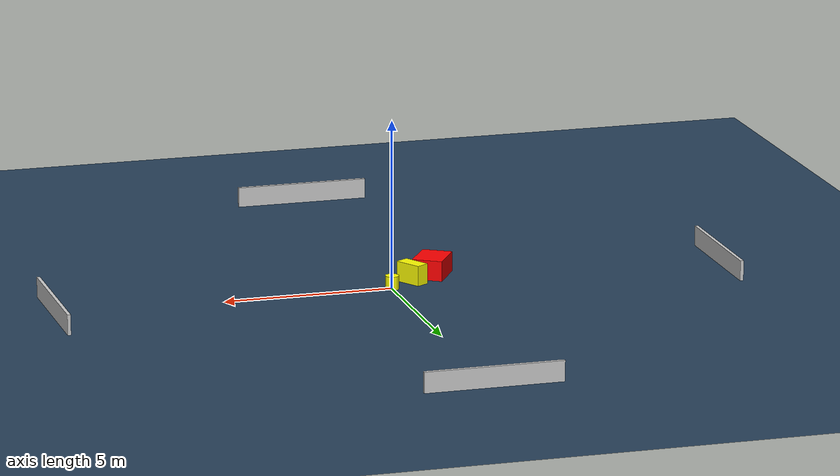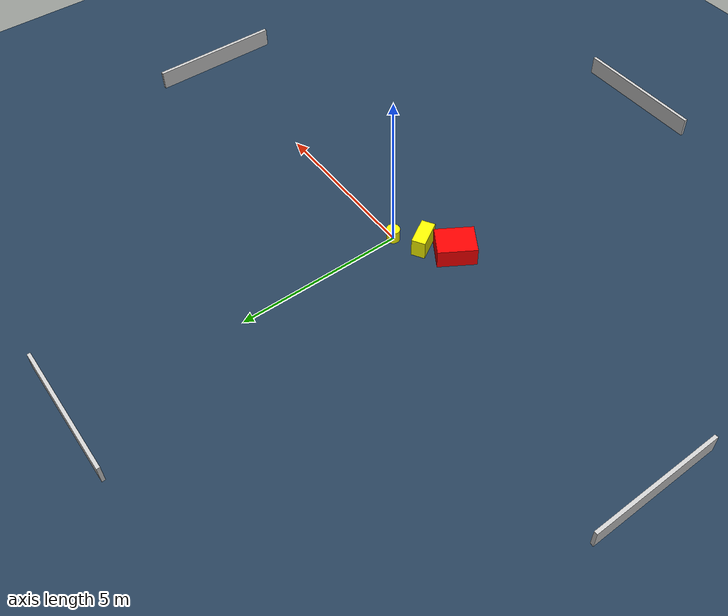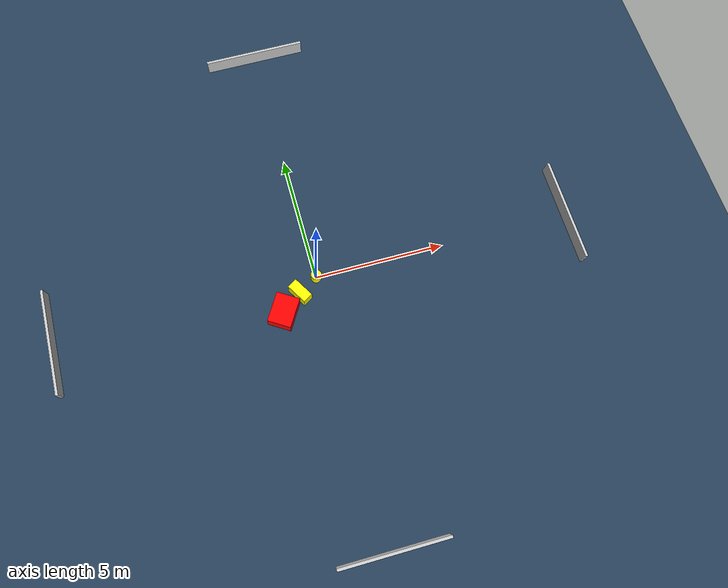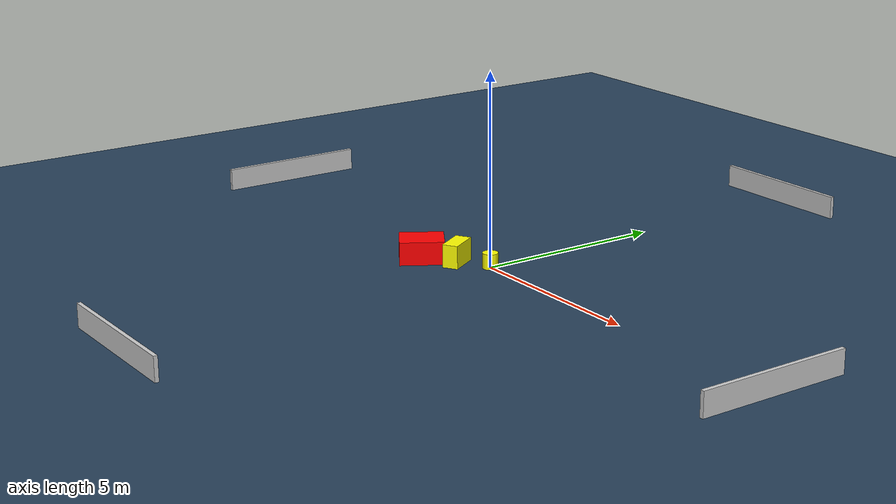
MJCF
<?xml version="1.0" ?>
<mujoco model="generated_environment">
  <option timestep="0.01" integrator="RK4" cone="elliptic"/>
  <default>
    <geom density="1"/>
  </default>
  <asset>
    <texture builtin="gradient" height="3072" name="skybox" rgb1="0.3 0.5 0.7" rgb2="0 0 0" type="skybox" width="512"/>
    <texture builtin="checker" height="300" name="groundplane" rgb1="0.2 0.3 0.4" rgb2="0.1 0.2 0.3" type="2d" width="300"/>
    <material name="groundplane" reflectance="0.2" texrepeat="5 5" texture="groundplane"/>
  </asset>
  <worldbody>
    <light dir="0 0 -1" directional="true" pos="0 0 1.5"/>
    <geom condim="3" friction="0.5 0.005 0.001" material="groundplane" name="floor" pos="0 0 0" size="0 0 0.05" type="plane"/>
    <body name="walls">
      <geom name="wall_1" condim="4" pos="-10.0 0.0 0.3" rgba="0.800000011920929 0.800000011920929 0.800000011920929 1.0" size="0.05 2.0 0.3" type="box"/>
      <geom name="wall_2" condim="4" pos="10.0 0.0 0.3" rgba="0.800000011920929 0.800000011920929 0.800000011920929 1.0" size="0.05 2.0 0.3" type="box"/>
      <geom name="wall_3" condim="4" pos="0.0 -10.0 0.3" rgba="0.800000011920929 0.800000011920929 0.800000011920929 1.0" size="2.0 0.05 0.3" type="box"/>
      <geom name="wall_4" condim="4" pos="0.0 10.0 0.3" rgba="0.800000011920929 0.800000011920929 0.800000011920929 1.0" size="2.0 0.05 0.3" type="box"/>
    </body>
    <body name="robot">
      <joint name="joint_x" type="slide" pos="0 0 0" axis="1 0 0"/>
      <joint name="joint_y" type="slide" pos="0 0 0" axis="0 1 0"/>
      <geom name="robot" type="cylinder" pos="0.0 0.0 0.2" size="0.2 0.2 0.0" mass="5.0" friction="1.0 0.005 0.0001" condim="4" rgba="1.0 1.0 0.0 1.0"/>
    </body>
    <body name="obstacle_1_movable">
      <geom name="obstacle_1_movable" condim="4" pos="-0.754643984062168 -0.49663839013987804 0.3" euler="0 0 121.09843500219768" friction="0.0 0.005 0.001" rgba="1.0 1.0 0.0 1.0" size="0.41448237438411933 0.2038838804669299 0.3" type="box" mass="0.1"/>
      <joint type="free"/>
    </body>
    <body name="obstacle_2_static">
      <geom name="obstacle_2_static" condim="4" pos="-1.519232759055642 -1.0439565885288666 0.3" euler="0 0 148.11035237633587" friction="0.0 0.005 0.001" rgba="1.0 0.0 0.0 1.0" size="0.44740214023785446 0.5717236997119121 0.3" type="box"/>
    </body>
  </worldbody>
  <actuator>
    <motor name="actuator_x" joint="joint_x" gear="1" ctrlrange="-1 1"/>
    <motor name="actuator_y" joint="joint_y" gear="1" ctrlrange="-1 1"/>
  </actuator>
</mujoco>
